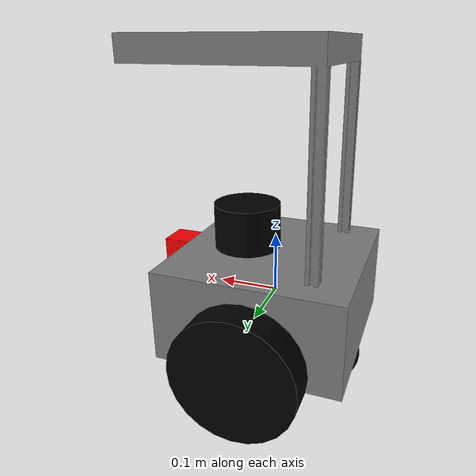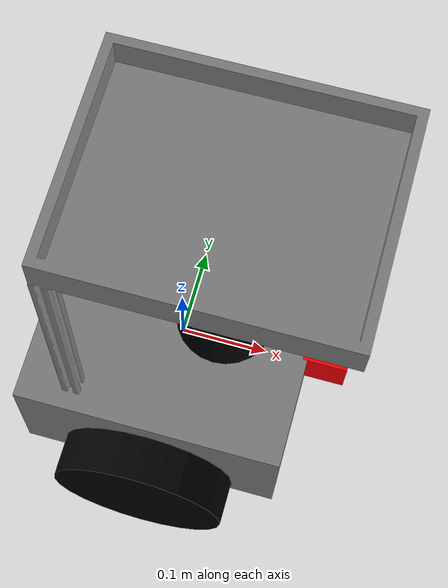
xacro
<?xml version="1.0"?>
<robot name="diffbot" xmlns:xacro="http://www.ros.org/wiki/xacro">

  <!-- Define common properties - Updated for 30x30cm chassis -->
  <xacro:property name="base_size" value="0.3 0.3 0.15"/>
  <xacro:property name="base_mass" value="5.0"/>
  <xacro:property name="base_inertia_val" value="0.02"/>

  <xacro:property name="wheel_radius_val" value="0.1"/>
  <xacro:property name="wheel_length_val" value="0.05"/>
  <xacro:property name="wheel_mass" value="0.5"/>
  <xacro:property name="wheel_inertia_val" value="0.01"/>
  <xacro:property name="wheel_separation" value="0.35"/>  <!-- Distance between wheels -->

  <xacro:property name="caster_radius_val" value="0.05"/>
  <xacro:property name="caster_mass" value="0.25"/>
  <xacro:property name="caster_inertia_val" value="0.01"/>

  <xacro:property name="camera_size" value="0.05 0.05 0.05"/>
  <xacro:property name="camera_mass" value="0.1"/>
  <xacro:property name="camera_inertia_val" value="0.001"/>
  <xacro:property name="camera_baseline" value="0.06"/>
  <xacro:property name="camera_height" value="0.10"/>
  <xacro:property name="camera_horizontal_fov" value="60"/>

  <xacro:property name="lidar_length_val" value="0.1"/>
  <xacro:property name="lidar_radius_val" value="0.055"/>
  <xacro:property name="lidar_mass" value="0.2"/>
  <xacro:property name="lidar_inertia_val" value="0.001"/>

  <xacro:arg name="camera_enabled" default="true" />

  <!-- Materials -->
  <material name="gray">
    <color rgba="0.5 0.5 0.5 1"/>
  </material>
  <material name="black">
    <color rgba="0 0 0 1"/>
  </material>
  <material name="white">
    <color rgba="1 1 1 1"/>
  </material>
  <material name="red">
    <color rgba="1 0 0 1"/>
  </material>
  <material name="green">
    <color rgba="0 1 0 1"/>
  </material>
  <material name="hospital_blue">
    <color rgba="0.2 0.6 0.9 1"/>
  </material>

  <!-- Base Link - 30x30cm chassis -->
  <link name="base_link">
    <visual>
      <geometry>
        <box size="${base_size}"/>
      </geometry>
      <material name="gray"/>
    </visual>
    <collision>
      <geometry>
        <box size="${base_size}"/>
      </geometry>
    </collision>
    <inertial>
      <mass value="${base_mass}"/>
      <inertia ixx="${base_inertia_val}" ixy="0" ixz="0" iyy="${base_inertia_val}" iyz="0" izz="${base_inertia_val}"/>
    </inertial>
  </link>

  <!-- Left Wheel -->
  <link name="left_wheel">
    <visual>
      <geometry>
        <cylinder length="${wheel_length_val}" radius="${wheel_radius_val}"/>
      </geometry>
      <material name="black"/>
    </visual>
    <collision>
      <geometry>
        <cylinder length="${wheel_length_val}" radius="${wheel_radius_val}"/>
      </geometry>
    </collision>
    <inertial>
      <mass value="${wheel_mass}"/>
      <inertia ixx="${wheel_inertia_val}" ixy="0" ixz="0" iyy="${wheel_inertia_val}" iyz="0" izz="${wheel_inertia_val}"/>
    </inertial>
  </link>

  <!-- Right Wheel -->
  <link name="right_wheel">
    <visual>
      <geometry>
        <cylinder length="${wheel_length_val}" radius="${wheel_radius_val}"/>
      </geometry>
      <material name="black"/>
    </visual>
    <collision>
      <geometry>
        <cylinder length="${wheel_length_val}" radius="${wheel_radius_val}"/>
      </geometry>
    </collision>
    <inertial>
      <mass value="${wheel_mass}"/>
      <inertia ixx="${wheel_inertia_val}" ixy="0" ixz="0" iyy="${wheel_inertia_val}" iyz="0" izz="${wheel_inertia_val}"/>
    </inertial>
  </link>

  <!-- Front Caster Wheel -->
  <link name="caster_wheel">
    <visual>
      <geometry>
        <sphere radius="${caster_radius_val}"/>
      </geometry>
      <material name="black"/>
    </visual>
    <collision>
      <geometry>
        <sphere radius="${caster_radius_val}"/>
      </geometry>
    </collision>
    <inertial>
      <mass value="${caster_mass}"/>
      <inertia ixx="${caster_inertia_val}" ixy="0" ixz="0" iyy="${caster_inertia_val}" iyz="0" izz="${caster_inertia_val}"/>
    </inertial>
  </link>

  <!-- Back Caster Wheel -->
  <link name="caster_wheel2">
    <visual>
      <geometry>
        <sphere radius="${caster_radius_val}"/>
      </geometry>
      <material name="black"/>
    </visual>
    <collision>
      <geometry>
        <sphere radius="${caster_radius_val}"/>
      </geometry>
    </collision>
    <inertial>
      <mass value="${caster_mass}"/>
      <inertia ixx="${caster_inertia_val}" ixy="0" ixz="0" iyy="${caster_inertia_val}" iyz="0" izz="${caster_inertia_val}"/>
    </inertial>
  </link>

  <!-- RGB-D Camera for object detection -->
  <link name="camera1">
    <visual>
      <geometry>
        <box size="${camera_size}"/>
      </geometry>
      <material name="red"/>
    </visual>
    <collision>
      <geometry>
        <box size="${camera_size}"/>
      </geometry>
    </collision>
    <inertial>
      <mass value="${camera_mass}"/>
      <inertia ixx="${camera_inertia_val}" ixy="0" ixz="0" iyy="${camera_inertia_val}" iyz="0" izz="${camera_inertia_val}"/>
    </inertial>
  </link>

  <!-- LiDAR for SLAM and navigation -->
  <link name="lidar">
    <visual>
      <geometry>
        <cylinder length="${lidar_length_val}" radius="${lidar_radius_val}"/>
      </geometry>
      <material name="black"/>
    </visual>
    <collision>
      <geometry>
        <cylinder length="${lidar_length_val}" radius="${lidar_radius_val}"/>
      </geometry>
    </collision>
    <inertial>
      <mass value="${lidar_mass}"/>
      <inertia ixx="${lidar_inertia_val}" ixy="0" ixz="0" iyy="${lidar_inertia_val}" iyz="0" izz="${lidar_inertia_val}"/>
    </inertial>
  </link>

  <link name="utility_stand">
    <visual>
        <origin xyz="0.0 0.0 0.05" rpy="0 0 0"/> <!-- adjust height so legs touch the floor -->
        <geometry>
          <mesh filename="file://$(find custom_bot)/models/utility_stand.stl" scale="0.001 0.001 0.001"/>
        </geometry>
        <material name="gray"/>
    </visual>

    <collision>
        <origin xyz="0 0 0.05" rpy="0 0 0"/>
        <geometry>
          <mesh filename="file://$(find custom_bot)/models/utility_stand.stl" scale="0.001 0.001 0.001"/>
        </geometry>
    </collision>

    <inertial>
        <mass value="1.0"/>
        <inertia ixx="0.08" ixy="0" ixz="0"
                iyy="0.08" iyz="0"
                izz="0.02"/>
    </inertial>
  </link>

  <!-- Joints -->

  <!-- Left Wheel Joint - Positioned for 30cm chassis -->
  <joint name="left_wheel_joint" type="continuous">
    <parent link="base_link"/>
    <child link="left_wheel"/>
    <!-- Position: half of wheel_separation distance from center -->
    <origin xyz="0 ${wheel_separation/2} -0.05" rpy="-1.5708 0 0"/>
    <axis xyz="0 0 1"/>
    <!-- Reduced friction for smoother movement -->
    <dynamics damping="0.1" friction="0.1"/>
  </joint>

  <!-- Right Wheel Joint - Positioned for 30cm chassis -->
  <joint name="right_wheel_joint" type="continuous">
    <parent link="base_link"/>
    <child link="right_wheel"/>
    <!-- Position: negative half of wheel_separation distance from center -->
    <origin xyz="0 -${wheel_separation/2} -0.05" rpy="-1.5708 0 0"/>
    <axis xyz="0 0 1"/>
    <!-- Reduced friction for smoother movement -->
    <dynamics damping="0.1" friction="0.1"/>
  </joint>

  <!-- Front Caster Wheel Joint - Positioned for 30cm chassis -->
  <joint name="caster_wheel_joint" type="fixed">
    <parent link="base_link"/>
    <child link="caster_wheel"/>
    <!-- Position: 12cm forward from center (leaving 3cm margin from edge) -->
    <origin xyz="0.10 0 -0.1"/>
    <axis xyz="0 0 1"/>
  </joint>

  <!-- Back Caster Wheel Joint - Positioned for 30cm chassis -->
  <joint name="caster_wheel_joint2" type="fixed">
    <parent link="base_link"/>
    <child link="caster_wheel2"/>
    <!-- Position: 12cm backward from center (leaving 3cm margin from edge) -->
    <origin xyz="-0.10 0 -0.1"/>
    <axis xyz="0 0 1"/>
  </joint>

  <!-- Camera Joint - Mounted at front below LiDAR -->
  <joint name="camera_joint" type="fixed">
    <parent link="base_link"/>
    <child link="camera1"/>
    <!-- Position: at front edge, lower than LiDAR -->
    <origin xyz="0.17 0 0.05" rpy="0 0 0"/>
    <axis xyz="0 0 1"/>
  </joint>

  <!-- Lidar Joint - Positioned at front of robot with correct height -->
  <joint name="lidar_joint" type="fixed">
    <parent link="base_link"/>
    <child link="lidar"/>
    <!-- Position: at front edge (15cm from center), raised to proper height -->
    <origin xyz="0.05 0 0.10" rpy="0 0 0"/>
    <axis xyz="0 0 1"/>
  </joint>

    <!-- Fixed joint attaching utility stand to the base -->
  <joint name="stand_joint" type="fixed">
    <parent link="base_link"/>
    <child link="utility_stand"/>
    <!-- Adjust XYZ and RPY so the stand sits correctly on the robot -->
    <origin xyz="-0.10 -0.13 0.02" rpy="0 0 0"/>
  </joint>

  <!-- Gazebo Visuals and Friction Parameters -->
  <gazebo reference="base_link">
    <material>Gazebo/Grey</material>
  </gazebo>

  <gazebo reference="left_wheel">
    <material>Gazebo/Black</material>
    <mu1 value="1.0"/>
    <mu2 value="1.0"/>
  </gazebo>

  <gazebo reference="right_wheel">
    <material>Gazebo/Black</material>
    <mu1 value="1.0"/>
    <mu2 value="1.0"/>
  </gazebo>

  <gazebo reference="caster_wheel">
    <material>Gazebo/Black</material>
    <mu1 value="0.5"/>
    <mu2 value="0.5"/>
    <kp>1000000000000000</kp>
    <kd>1000000000000000</kd>
  </gazebo>

  <gazebo reference="caster_wheel2">
    <material>Gazebo/Black</material>
    <mu1 value="0.5"/>
    <mu2 value="0.5"/>
    <kp>1000000000000000</kp>
    <kd>1000000000000000</kd>
  </gazebo>

  <gazebo reference="camera1">
    <material>Gazebo/Red</material>
  </gazebo>

  <gazebo reference="lidar">
    <material>Gazebo/Black</material>
  </gazebo>

  <gazebo reference="utility_stand">
    <material>Gazebo/Grey</material>
  </gazebo>

  <!-- Gazebo Plugin for Differential Drive -->
  <gazebo>

    <plugin filename="gz-sim-sensors-system" name="gz::sim::systems::Sensors">
            <render_engine>ogre2</render_engine>
    </plugin>

    <plugin filename="gz-sim-diff-drive-system" name="gz::sim::systems::DiffDrive">
            <left_joint>left_wheel_joint</left_joint>
            <right_joint>right_wheel_joint</right_joint>
            <!-- Updated wheel separation for 30cm chassis -->
            <wheel_separation>${wheel_separation}</wheel_separation>
            <wheel_radius>${wheel_radius_val}</wheel_radius>
            <odom_publish_frequency>30</odom_publish_frequency>
            <!-- Increased torque and acceleration for faster movement -->
            <max_wheel_torque>50.0</max_wheel_torque>
            <max_wheel_acceleration>500</max_wheel_acceleration>
            <!-- Speed limits for hospital environment -->
            <max_linear_velocity>2.0</max_linear_velocity>
            <max_angular_velocity>3.0</max_angular_velocity>
            <topic>/cmd_vel</topic>
            <odom_topic>/odom</odom_topic>
            <frame_id>odom</frame_id>
            <child_frame_id>base_link</child_frame_id>
    </plugin>

    <plugin filename="gz-sim-joint-state-publisher-system" name="gz::sim::systems::JointStatePublisher">
      <update_rate>50</update_rate>
      <joint_name>left_wheel_joint</joint_name>
      <joint_name>right_wheel_joint</joint_name>
      <topic>joint_states</topic>
      <update_rate>30</update_rate>
    </plugin>

    <plugin filename="gz-sim-odometry-publisher-system" name="gz::sim::systems::OdometryPublisher">
      <odom_frame>odom</odom_frame>
      <robot_base_frame>base_link</robot_base_frame>
      <odom_topic>/odom</odom_topic>
      <tf_topic>/tf</tf_topic>
      <dimensions>2</dimensions>
      <odom_publish_frequency>10</odom_publish_frequency>
    </plugin>
  </gazebo>

  <!-- LiDAR Sensor Plugin -->
  <gazebo reference="lidar">
        <sensor name='gpu_lidar' type='gpu_lidar'>
            <topic>scan</topic>
            <update_rate>30</update_rate>
            <gz_frame_id>lidar</gz_frame_id>
            <lidar>
                <scan>
                    <horizontal>
                        <samples>360</samples>
                        <resolution>1</resolution>
                        <min_angle>-3.14</min_angle>
                        <max_angle>3.14</max_angle>
                    </horizontal>
                </scan>
                <range>
                    <min>0.05</min>
                    <max>20.0</max>
                    <resolution>0.01</resolution>
                </range>
                <noise>
                    <type>gaussian</type>
                    <mean>0.0</mean>
                    <stddev>0.001</stddev>
                </noise>
            </lidar>
            <always_on>1</always_on>
            <visualize>true</visualize>
        </sensor>
  </gazebo>
</robot>
